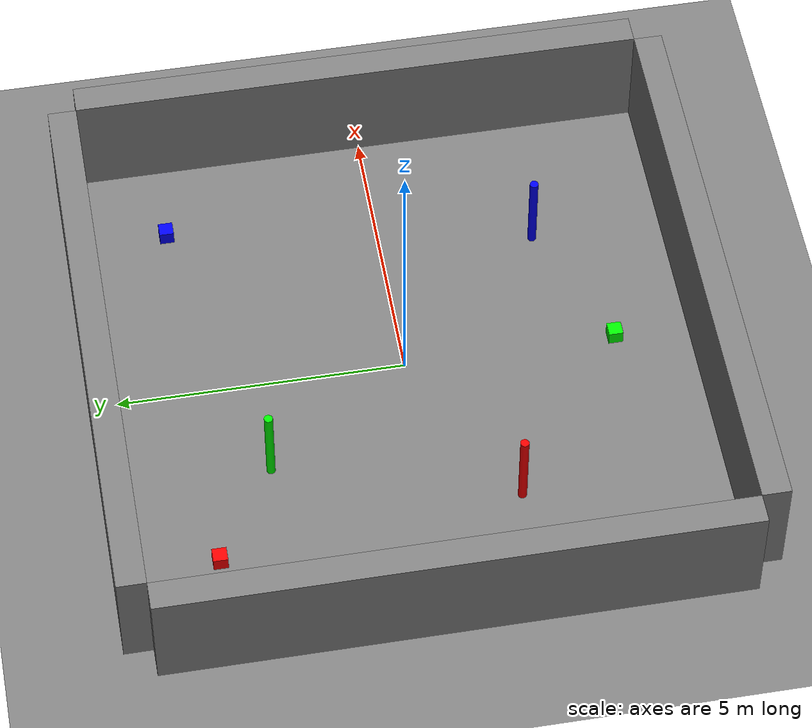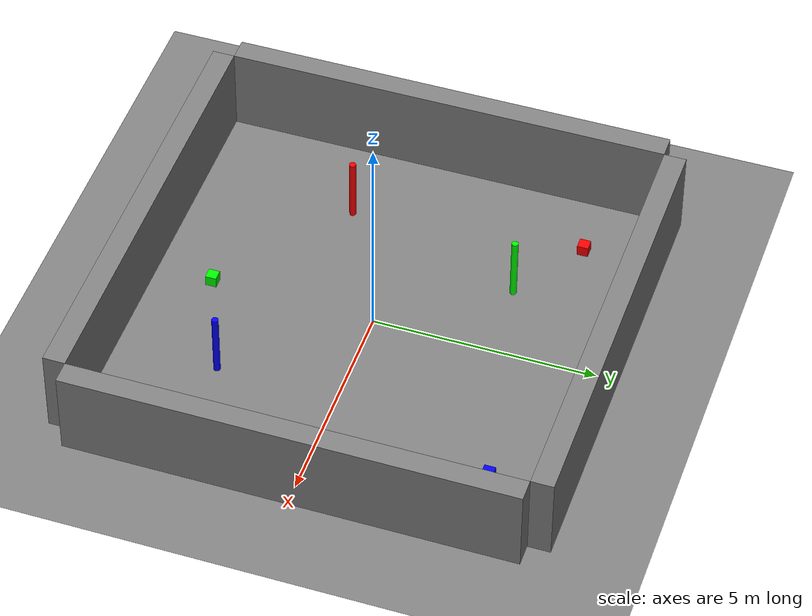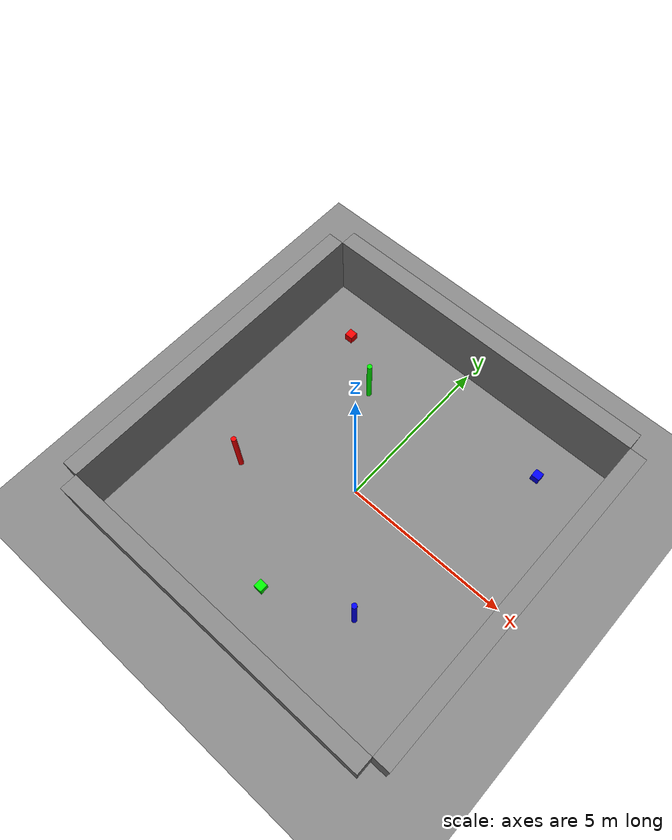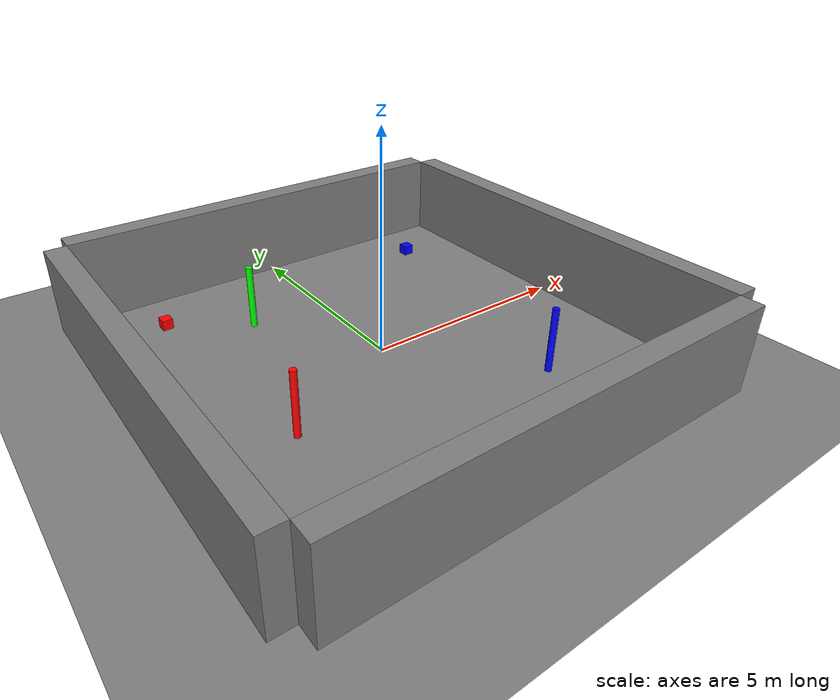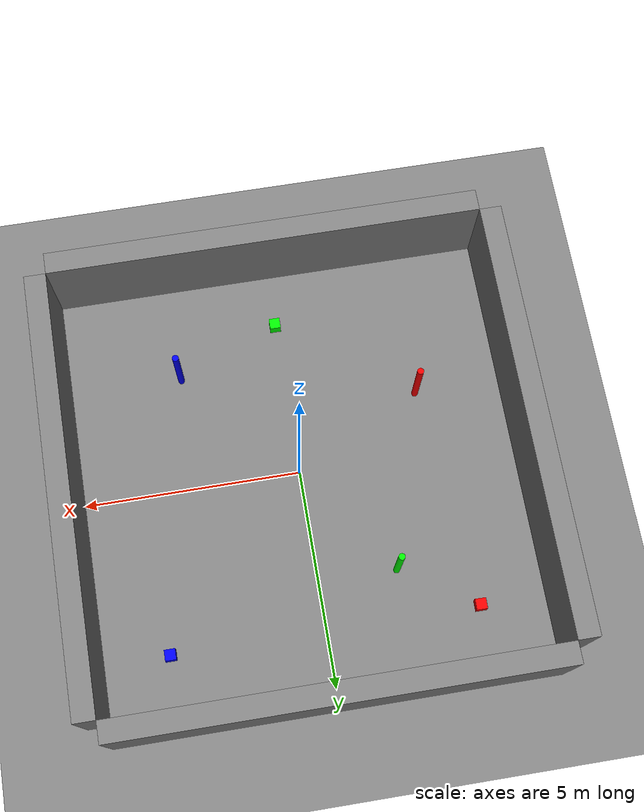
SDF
<?xml version="1.0" ?>
<sdf version="1.9">
  <world name="random_world">
    <physics name="1ms" type="ignored">
      <max_step_size>0.01</max_step_size>
      <real_time_update_rate>400</real_time_update_rate>
      <real_time_factor>2.0</real_time_factor>
    </physics>

    <plugin filename="ignition-gazebo-physics-system"
            name="ignition::gazebo::systems::Physics">
      <include_entity_names>true</include_entity_names>
    </plugin>
    <plugin filename="ignition-gazebo-sensors-system"
            name="ignition::gazebo::systems::Sensors">
      <render_engine>ogre2</render_engine>
    </plugin>
    <plugin filename="ignition-gazebo-user-commands-system"
            name="ignition::gazebo::systems::UserCommands"/>
    <plugin filename="libignition-gazebo-contact-system.so"
            name="ignition::gazebo::systems::Contact">
      <topic>/world/random_world/physics/contacts</topic>
    </plugin>
    <plugin filename="ignition-gazebo-scene-broadcaster-system"
            name="ignition::gazebo::systems::SceneBroadcaster"/>

    <light name="sun" type="directional">
      <pose>0 0 10 0 0 0</pose>
      <cast_shadows>true</cast_shadows>
      <intensity>1</intensity>
      <direction>-0.5 0.5 -1</direction>
      <diffuse>1 1 1 1</diffuse>
      <specular>0.1 0.1 0.1 1</specular>
      <attenuation>
        <range>10</range>
        <linear>1</linear>
        <constant>1</constant>
        <quadratic>0</quadratic>
      </attenuation>
    </light>

    <model name="ground_plane">
      <static>true</static>
      <link name="link">
        <collision name="collision">
          <geometry>
            <plane>
              <normal>0 0 1</normal>
              <size>50 50</size>
            </plane>
          </geometry>
          <surface><friction><ode/></friction></surface>
        </collision>
        <visual name="visual">
          <geometry>
            <plane>
              <normal>0 0 1</normal>
              <size>50 50</size>
            </plane>
          </geometry>
          <material>
            <ambient>0.5 0.5 0.5 1</ambient>
            <diffuse>0.5 0.5 0.5 1</diffuse>
          </material>
        </visual>
      </link>
    </model>

    <!-- Boundary walls. -->
    <model name="north_wall">
      <pose>0 5.25 1 0 0 0</pose>
      <static>true</static>
      <link name="link">
        <collision name="collision">
          <geometry><box><size>10 0.5 2</size></box></geometry>
        </collision>
        <visual name="visual">
          <geometry><box><size>10 0.5 2</size></box></geometry>
          <material>
            <ambient>0.5 0.5 0.5 1</ambient>
            <diffuse>0.5 0.5 0.5 1</diffuse>
          </material>
        </visual>
      </link>
    </model>
    <model name="south_wall">
      <pose>0 -5.25 1 0 0 0</pose>
      <static>true</static>
      <link name="link">
        <collision name="collision">
          <geometry><box><size>10 0.5 2</size></box></geometry>
        </collision>
        <visual name="visual">
          <geometry><box><size>10 0.5 2</size></box></geometry>
          <material>
            <ambient>0.5 0.5 0.5 1</ambient>
            <diffuse>0.5 0.5 0.5 1</diffuse>
          </material>
        </visual>
      </link>
    </model>
    <model name="east_wall">
      <pose>5.25 0 1 0 0 0</pose>
      <static>true</static>
      <link name="link">
        <collision name="collision">
          <geometry><box><size>0.5 10 2</size></box></geometry>
        </collision>
        <visual name="visual">
          <geometry><box><size>0.5 10 2</size></box></geometry>
          <material>
            <ambient>0.5 0.5 0.5 1</ambient>
            <diffuse>0.5 0.5 0.5 1</diffuse>
          </material>
        </visual>
      </link>
    </model>
    <model name="west_wall">
      <pose>-5.25 0 1 0 0 0</pose>
      <static>true</static>
      <link name="link">
        <collision name="collision">
          <geometry><box><size>0.5 10 2</size></box></geometry>
        </collision>
        <visual name="visual">
          <geometry><box><size>0.5 10 2</size></box></geometry>
          <material>
            <ambient>0.5 0.5 0.5 1</ambient>
            <diffuse>0.5 0.5 0.5 1</diffuse>
          </material>
        </visual>
      </link>
    </model>

    <!-- Existing target sticks. Names and poses are intentionally unchanged. -->
    <model name="red_box">
      <pose>-3.0 -1.5 0.006 0 0 0.37</pose>
      <static>true</static>
      <link name="link">
        <visual name="visual">
          <pose>0 0 0.75 0 0 0</pose>
          <visibility_flags>4</visibility_flags>
          <geometry>
            <cylinder><radius>0.075</radius><length>1.5</length></cylinder>
          </geometry>
          <material>
            <ambient>1 0 0 1</ambient>
            <diffuse>1 0 0 1</diffuse>
            <emissive>1 0 0 1</emissive>
          </material>
        </visual>
      </link>
    </model>
    <model name="green_box">
      <pose>-1.8 2.6 0.006 0 0 1.12</pose>
      <static>true</static>
      <link name="link">
        <visual name="visual">
          <pose>0 0 0.75 0 0 0</pose>
          <visibility_flags>4</visibility_flags>
          <geometry>
            <cylinder><radius>0.075</radius><length>1.5</length></cylinder>
          </geometry>
          <material>
            <ambient>0 1 0 1</ambient>
            <diffuse>0 1 0 1</diffuse>
            <emissive>0 1 0 1</emissive>
          </material>
        </visual>
      </link>
    </model>
    <model name="blue_box">
      <pose>2.4 -2.7 0.006 0 0 2.31</pose>
      <static>true</static>
      <link name="link">
        <visual name="visual">
          <pose>0 0 0.75 0 0 0</pose>
          <visibility_flags>4</visibility_flags>
          <geometry>
            <cylinder><radius>0.075</radius><length>1.5</length></cylinder>
          </geometry>
          <material>
            <ambient>0 0 1 1</ambient>
            <diffuse>0 0 1 1</diffuse>
            <emissive>0 0 1 1</emissive>
          </material>
        </visual>
      </link>
    </model>

    <!-- Static 50 cm delivery boxes, placed clear of the central spawn area. -->
    <model name="red_delivery_box">
      <pose>-3.5 3.7 0.125 0 0 0</pose>
      <static>true</static>
      <link name="link">
        <collision name="collision">
          <geometry><box><size>0.25 0.25 0.25</size></box></geometry>
        </collision>
        <visual name="visual">
          <geometry><box><size>0.25 0.25 0.25</size></box></geometry>
          <material>
            <ambient>1 0 0 1</ambient>
            <diffuse>1 0 0 1</diffuse>
          </material>
        </visual>
      </link>
    </model>
    <model name="green_delivery_box">
      <pose>0 -3.7 0.125 0 0 0</pose>
      <static>true</static>
      <link name="link">
        <collision name="collision">
          <geometry><box><size>0.25 0.25 0.25</size></box></geometry>
        </collision>
        <visual name="visual">
          <geometry><box><size>0.25 0.25 0.25</size></box></geometry>
          <material>
            <ambient>0 1 0 1</ambient>
            <diffuse>0 1 0 1</diffuse>
          </material>
        </visual>
      </link>
    </model>
    <model name="blue_delivery_box">
      <pose>3.5 3.7 0.125 0 0 0</pose>
      <static>true</static>
      <link name="link">
        <collision name="collision">
          <geometry><box><size>0.25 0.25 0.25</size></box></geometry>
        </collision>
        <visual name="visual">
          <geometry><box><size>0.25 0.25 0.25</size></box></geometry>
          <material>
            <ambient>0 0 1 1</ambient>
            <diffuse>0 0 1 1</diffuse>
          </material>
        </visual>
      </link>
    </model>

    <model name="top_view_camera">
      <static>true</static>
      <pose>0 0 12 0 1.57079632679 0</pose>
      <link name="link">
        <sensor name="top_view_camera" type="camera">
          <always_on>true</always_on>
          <update_rate>30</update_rate>
          <topic>top_view_camera/image</topic>
          <camera>
            <horizontal_fov>1.35</horizontal_fov>
            <image>
              <width>1280</width>
              <height>720</height>
              <format>R8G8B8</format>
            </image>
            <clip>
              <near>0.1</near>
              <far>100</far>
            </clip>
          </camera>
        </sensor>
      </link>
    </model>
  </world>
</sdf>
